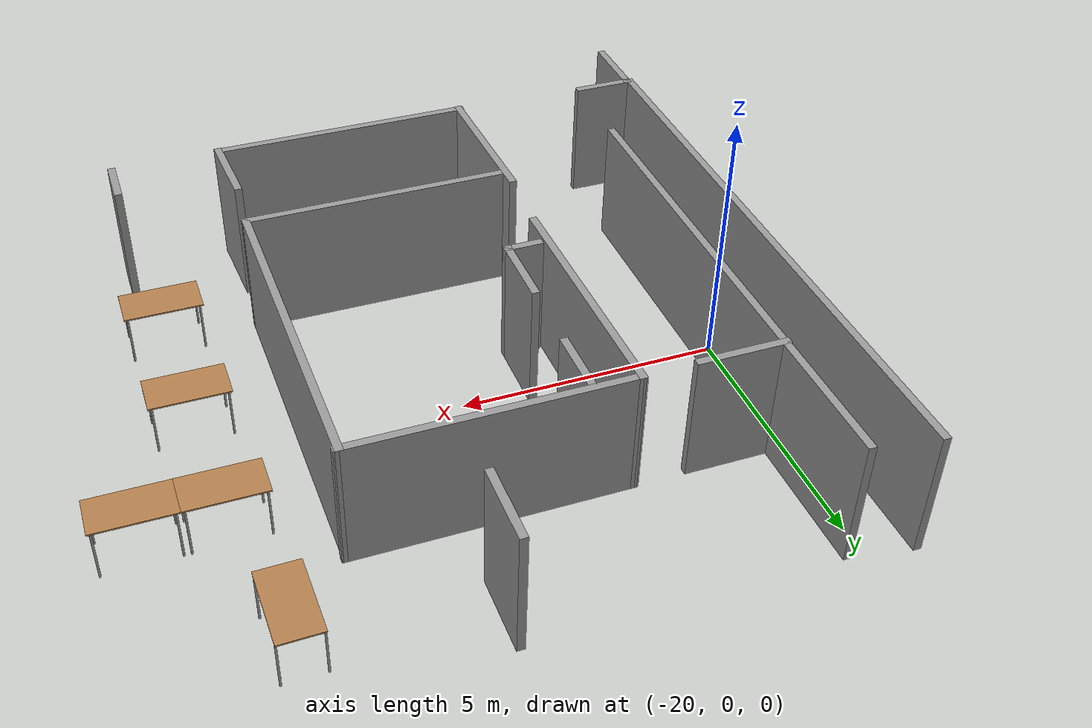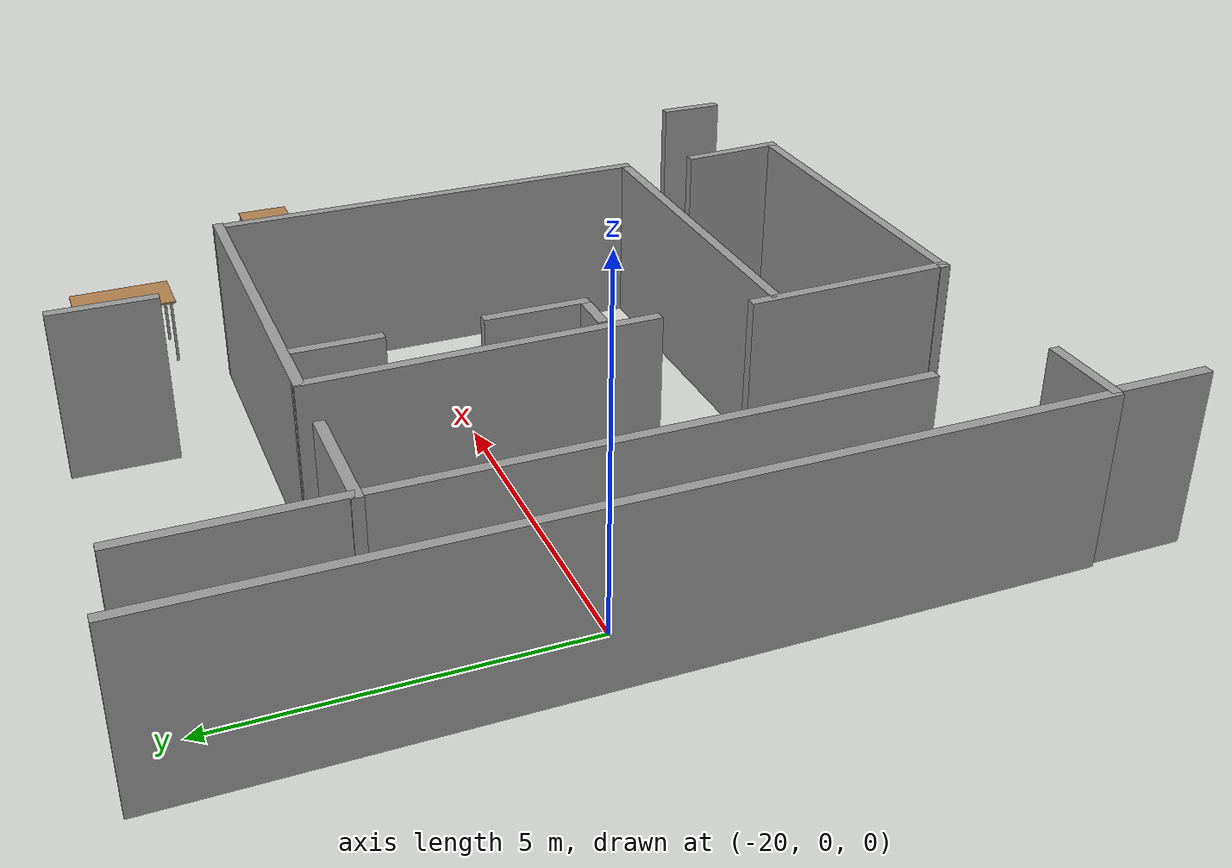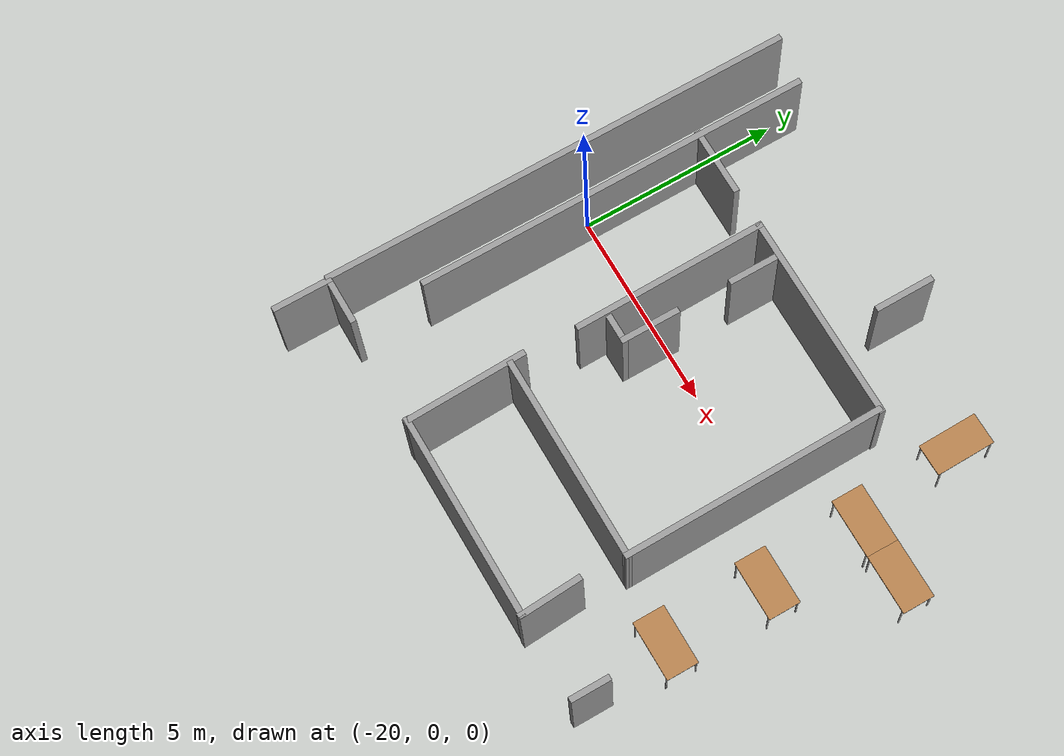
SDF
<sdf version="1.7">
 <model name="turtlebot3_world_V3">
  <link name="turtlebot3_world_1::The_Project_Hub_Building::Wall_0">
   <pose>-17.0813 -4.7815 0 0 0 -1.54154</pose>
   <visual name="Wall_0_Visual">
    <pose>0 0 1.25 0 -0 0</pose>
    <geometry><box><size>3.11558 0.15 2.5</size></box></geometry>
    <material>
     <script><uri>file://media/materials/scripts/gazebo.material</uri><name>Gazebo/Grey</name></script>
     <ambient>1 1 1 1</ambient>
     <shader type="pixel"/>
    </material>
    <meta><layer>0</layer></meta>
   </visual>
   <collision name="Wall_0_Collision">
    <pose>0 0 1.25 0 -0 0</pose>
    <geometry><box><size>3.11558 0.15 2.5</size></box></geometry>
    <surface>
     <friction>
      <ode><mu>1</mu><mu2>1</mu2><fdir1>0 0 0</fdir1><slip1>0</slip1><slip2>0</slip2></ode>
      <torsional>
       <coefficient>1</coefficient>
       <patch_radius>0</patch_radius>
       <surface_radius>0</surface_radius>
       <use_patch_radius>1</use_patch_radius>
       <ode><slip>0</slip></ode>
      </torsional>
     </friction>
     <bounce><restitution_coefficient>0</restitution_coefficient><threshold>1e+06</threshold></bounce>
     <contact>
      <collide_without_contact>0</collide_without_contact>
      <collide_without_contact_bitmask>1</collide_without_contact_bitmask>
      <collide_bitmask>1</collide_bitmask>
      <ode>
       <soft_cfm>0</soft_cfm>
       <soft_erp>0.2</soft_erp>
       <kp>1e+13</kp>
       <kd>1</kd>
       <max_vel>0.01</max_vel>
       <min_depth>0</min_depth>
      </ode>
      <bullet>
       <split_impulse>1</split_impulse>
       <split_impulse_penetration_threshold>-0.01</split_impulse_penetration_threshold>
       <soft_cfm>0</soft_cfm>
       <soft_erp>0.2</soft_erp>
       <kp>1e+13</kp>
       <kd>1</kd>
      </bullet>
     </contact>
    </surface>
   </collision>
  </link>
  <link name="turtlebot3_world_1::The_Project_Hub_Building::Wall_1">
   <pose>-14.5053 -6.2463 0 0 -0 0</pose>
   <visual name="Wall_1_Visual">
    <pose>0 0 1.25 0 -0 0</pose>
    <geometry><box><size>5.25 0.15 2.5</size></box></geometry>
    <material>
     <script><uri>file://media/materials/scripts/gazebo.material</uri><name>Gazebo/Grey</name></script>
     <ambient>1 1 1 1</ambient>
     <shader type="pixel"/>
    </material>
    <meta><layer>0</layer></meta>
   </visual>
   <collision name="Wall_1_Collision">
    <pose>0 0 1.25 0 -0 0</pose>
    <geometry><box><size>5.25 0.15 2.5</size></box></geometry>
    <surface>
     <friction>
      <ode><mu>1</mu><mu2>1</mu2><fdir1>0 0 0</fdir1><slip1>0</slip1><slip2>0</slip2></ode>
      <torsional>
       <coefficient>1</coefficient>
       <patch_radius>0</patch_radius>
       <surface_radius>0</surface_radius>
       <use_patch_radius>1</use_patch_radius>
       <ode><slip>0</slip></ode>
      </torsional>
     </friction>
     <bounce><restitution_coefficient>0</restitution_coefficient><threshold>1e+06</threshold></bounce>
     <contact>
      <collide_without_contact>0</collide_without_contact>
      <collide_without_contact_bitmask>1</collide_without_contact_bitmask>
      <collide_bitmask>1</collide_bitmask>
      <ode>
       <soft_cfm>0</soft_cfm>
       <soft_erp>0.2</soft_erp>
       <kp>1e+13</kp>
       <kd>1</kd>
       <max_vel>0.01</max_vel>
       <min_depth>0</min_depth>
      </ode>
      <bullet>
       <split_impulse>1</split_impulse>
       <split_impulse_penetration_threshold>-0.01</split_impulse_penetration_threshold>
       <soft_cfm>0</soft_cfm>
       <soft_erp>0.2</soft_erp>
       <kp>1e+13</kp>
       <kd>1</kd>
      </bullet>
     </contact>
    </surface>
   </collision>
  </link>
  <link name="turtlebot3_world_1::The_Project_Hub_Building::Wall_15">
   <pose>-14.0325 4.79599 0 0 0 -1.5708</pose>
   <visual name="Wall_15_Visual">
    <pose>0 0 1.25 0 -0 0</pose>
    <geometry><box><size>1.5 0.15 2.5</size></box></geometry>
    <material>
     <script><uri>file://media/materials/scripts/gazebo.material</uri><name>Gazebo/Grey</name></script>
     <ambient>1 1 1 1</ambient>
     <shader type="pixel"/>
    </material>
    <meta><layer>0</layer></meta>
   </visual>
   <collision name="Wall_15_Collision">
    <pose>0 0 1.25 0 -0 0</pose>
    <geometry><box><size>1.5 0.15 2.5</size></box></geometry>
    <surface>
     <friction>
      <ode><mu>1</mu><mu2>1</mu2><fdir1>0 0 0</fdir1><slip1>0</slip1><slip2>0</slip2></ode>
      <torsional>
       <coefficient>1</coefficient>
       <patch_radius>0</patch_radius>
       <surface_radius>0</surface_radius>
       <use_patch_radius>1</use_patch_radius>
       <ode><slip>0</slip></ode>
      </torsional>
     </friction>
     <bounce><restitution_coefficient>0</restitution_coefficient><threshold>1e+06</threshold></bounce>
     <contact>
      <collide_without_contact>0</collide_without_contact>
      <collide_without_contact_bitmask>1</collide_without_contact_bitmask>
      <collide_bitmask>1</collide_bitmask>
      <ode>
       <soft_cfm>0</soft_cfm>
       <soft_erp>0.2</soft_erp>
       <kp>1e+13</kp>
       <kd>1</kd>
       <max_vel>0.01</max_vel>
       <min_depth>0</min_depth>
      </ode>
      <bullet>
       <split_impulse>1</split_impulse>
       <split_impulse_penetration_threshold>-0.01</split_impulse_penetration_threshold>
       <soft_cfm>0</soft_cfm>
       <soft_erp>0.2</soft_erp>
       <kp>1e+13</kp>
       <kd>1</kd>
      </bullet>
     </contact>
    </surface>
   </collision>
  </link>
  <link name="turtlebot3_world_1::The_Project_Hub_Building::Wall_2">
   <pose>-11.9813 -5.5315 0 0 -0 1.62996</pose>
   <visual name="Wall_2_Visual">
    <pose>0 0 1.25 0 -0 0</pose>
    <geometry><box><size>1.61687 0.15 2.5</size></box></geometry>
    <material>
     <script><uri>file://media/materials/scripts/gazebo.material</uri><name>Gazebo/Grey</name></script>
     <ambient>1 1 1 1</ambient>
     <shader type="pixel"/>
    </material>
    <meta><layer>0</layer></meta>
   </visual>
   <collision name="Wall_2_Collision">
    <pose>0 0 1.25 0 -0 0</pose>
    <geometry><box><size>1.61687 0.15 2.5</size></box></geometry>
    <surface>
     <friction>
      <ode><mu>1</mu><mu2>1</mu2><fdir1>0 0 0</fdir1><slip1>0</slip1><slip2>0</slip2></ode>
      <torsional>
       <coefficient>1</coefficient>
       <patch_radius>0</patch_radius>
       <surface_radius>0</surface_radius>
       <use_patch_radius>1</use_patch_radius>
       <ode><slip>0</slip></ode>
      </torsional>
     </friction>
     <bounce><restitution_coefficient>0</restitution_coefficient><threshold>1e+06</threshold></bounce>
     <contact>
      <collide_without_contact>0</collide_without_contact>
      <collide_without_contact_bitmask>1</collide_without_contact_bitmask>
      <collide_bitmask>1</collide_bitmask>
      <ode>
       <soft_cfm>0</soft_cfm>
       <soft_erp>0.2</soft_erp>
       <kp>1e+13</kp>
       <kd>1</kd>
       <max_vel>0.01</max_vel>
       <min_depth>0</min_depth>
      </ode>
      <bullet>
       <split_impulse>1</split_impulse>
       <split_impulse_penetration_threshold>-0.01</split_impulse_penetration_threshold>
       <soft_cfm>0</soft_cfm>
       <soft_erp>0.2</soft_erp>
       <kp>1e+13</kp>
       <kd>1</kd>
      </bullet>
     </contact>
    </surface>
   </collision>
  </link>
  <link name="turtlebot3_world_1::The_Project_Hub_Building::Wall_36">
   <pose>-19.7235 0.579571 0 0 0 -1.5708</pose>
   <visual name="Wall_36_Visual">
    <pose>0 0 1.25 0 -0 0</pose>
    <geometry><box><size>10 0.15 2.5</size></box></geometry>
    <material>
     <script><uri>file://media/materials/scripts/gazebo.material</uri><name>Gazebo/Grey</name></script>
     <ambient>1 1 1 1</ambient>
     <shader type="pixel"/>
    </material>
    <meta><layer>0</layer></meta>
   </visual>
   <collision name="Wall_36_Collision">
    <pose>0 0 1.25 0 -0 0</pose>
    <geometry><box><size>10 0.15 2.5</size></box></geometry>
    <surface>
     <friction>
      <ode><mu>1</mu><mu2>1</mu2><fdir1>0 0 0</fdir1><slip1>0</slip1><slip2>0</slip2></ode>
      <torsional>
       <coefficient>1</coefficient>
       <patch_radius>0</patch_radius>
       <surface_radius>0</surface_radius>
       <use_patch_radius>1</use_patch_radius>
       <ode><slip>0</slip></ode>
      </torsional>
     </friction>
     <bounce><restitution_coefficient>0</restitution_coefficient><threshold>1e+06</threshold></bounce>
     <contact>
      <collide_without_contact>0</collide_without_contact>
      <collide_without_contact_bitmask>1</collide_without_contact_bitmask>
      <collide_bitmask>1</collide_bitmask>
      <ode>
       <soft_cfm>0</soft_cfm>
       <soft_erp>0.2</soft_erp>
       <kp>1e+13</kp>
       <kd>1</kd>
       <max_vel>0.01</max_vel>
       <min_depth>0</min_depth>
      </ode>
      <bullet>
       <split_impulse>1</split_impulse>
       <split_impulse_penetration_threshold>-0.01</split_impulse_penetration_threshold>
       <soft_cfm>0</soft_cfm>
       <soft_erp>0.2</soft_erp>
       <kp>1e+13</kp>
       <kd>1</kd>
      </bullet>
     </contact>
    </surface>
   </collision>
  </link>
  <link name="turtlebot3_world_1::The_Project_Hub_Building::Wall_38">
   <pose>-20.3068 -6.17125 0 0 -0 3.14159</pose>
   <visual name="Wall_38_Visual">
    <pose>0 0 1.25 0 -0 0</pose>
    <geometry><box><size>1.25 0.15 2.5</size></box></geometry>
    <material>
     <script><uri>file://media/materials/scripts/gazebo.material</uri><name>Gazebo/Grey</name></script>
     <ambient>1 1 1 1</ambient>
     <shader type="pixel"/>
    </material>
    <meta><layer>0</layer></meta>
   </visual>
   <collision name="Wall_38_Collision">
    <pose>0 0 1.25 0 -0 0</pose>
    <geometry><box><size>1.25 0.15 2.5</size></box></geometry>
    <surface>
     <friction>
      <ode><mu>1</mu><mu2>1</mu2><fdir1>0 0 0</fdir1><slip1>0</slip1><slip2>0</slip2></ode>
      <torsional>
       <coefficient>1</coefficient>
       <patch_radius>0</patch_radius>
       <surface_radius>0</surface_radius>
       <use_patch_radius>1</use_patch_radius>
       <ode><slip>0</slip></ode>
      </torsional>
     </friction>
     <bounce><restitution_coefficient>0</restitution_coefficient><threshold>1e+06</threshold></bounce>
     <contact>
      <collide_without_contact>0</collide_without_contact>
      <collide_without_contact_bitmask>1</collide_without_contact_bitmask>
      <collide_bitmask>1</collide_bitmask>
      <ode>
       <soft_cfm>0</soft_cfm>
       <soft_erp>0.2</soft_erp>
       <kp>1e+13</kp>
       <kd>1</kd>
       <max_vel>0.01</max_vel>
       <min_depth>0</min_depth>
      </ode>
      <bullet>
       <split_impulse>1</split_impulse>
       <split_impulse_penetration_threshold>-0.01</split_impulse_penetration_threshold>
       <soft_cfm>0</soft_cfm>
       <soft_erp>0.2</soft_erp>
       <kp>1e+13</kp>
       <kd>1</kd>
      </bullet>
     </contact>
    </surface>
   </collision>
  </link>
  <link name="turtlebot3_world_1::The_Project_Hub_Building::Wall_39">
   <pose>-20.8568 -6.84625 0 0 0 -1.5708</pose>
   <visual name="Wall_39_Visual">
    <pose>0 0 1.25 0 -0 0</pose>
    <geometry><box><size>1.5 0.15 2.5</size></box></geometry>
    <material>
     <script><uri>file://media/materials/scripts/gazebo.material</uri><name>Gazebo/Grey</name></script>
     <ambient>1 1 1 1</ambient>
     <shader type="pixel"/>
    </material>
    <meta><layer>0</layer></meta>
   </visual>
   <collision name="Wall_39_Collision">
    <pose>0 0 1.25 0 -0 0</pose>
    <geometry><box><size>1.5 0.15 2.5</size></box></geometry>
    <surface>
     <friction>
      <ode><mu>1</mu><mu2>1</mu2><fdir1>0 0 0</fdir1><slip1>0</slip1><slip2>0</slip2></ode>
      <torsional>
       <coefficient>1</coefficient>
       <patch_radius>0</patch_radius>
       <surface_radius>0</surface_radius>
       <use_patch_radius>1</use_patch_radius>
       <ode><slip>0</slip></ode>
      </torsional>
     </friction>
     <bounce><restitution_coefficient>0</restitution_coefficient><threshold>1e+06</threshold></bounce>
     <contact>
      <collide_without_contact>0</collide_without_contact>
      <collide_without_contact_bitmask>1</collide_without_contact_bitmask>
      <collide_bitmask>1</collide_bitmask>
      <ode>
       <soft_cfm>0</soft_cfm>
       <soft_erp>0.2</soft_erp>
       <kp>1e+13</kp>
       <kd>1</kd>
       <max_vel>0.01</max_vel>
       <min_depth>0</min_depth>
      </ode>
      <bullet>
       <split_impulse>1</split_impulse>
       <split_impulse_penetration_threshold>-0.01</split_impulse_penetration_threshold>
       <soft_cfm>0</soft_cfm>
       <soft_erp>0.2</soft_erp>
       <kp>1e+13</kp>
       <kd>1</kd>
      </bullet>
     </contact>
    </surface>
   </collision>
  </link>
  <link name="turtlebot3_world_1::The_Project_Hub_Building::Wall_4">
   <pose>-9.81422 -5.79277 0 0 0 -1.5708</pose>
   <visual name="Wall_4_Visual">
    <pose>0 0 1.25 0 -0 0</pose>
    <geometry><box><size>1 0.15 2.5</size></box></geometry>
    <material>
     <script><uri>file://media/materials/scripts/gazebo.material</uri><name>Gazebo/Grey</name></script>
     <ambient>1 1 1 1</ambient>
     <shader type="pixel"/>
    </material>
    <meta><layer>0</layer></meta>
   </visual>
   <collision name="Wall_4_Collision">
    <pose>0 0 1.25 0 -0 0</pose>
    <geometry><box><size>1 0.15 2.5</size></box></geometry>
    <surface>
     <friction>
      <ode><mu>1</mu><mu2>1</mu2><fdir1>0 0 0</fdir1><slip1>0</slip1><slip2>0</slip2></ode>
      <torsional>
       <coefficient>1</coefficient>
       <patch_radius>0</patch_radius>
       <surface_radius>0</surface_radius>
       <use_patch_radius>1</use_patch_radius>
       <ode><slip>0</slip></ode>
      </torsional>
     </friction>
     <bounce><restitution_coefficient>0</restitution_coefficient><threshold>1e+06</threshold></bounce>
     <contact>
      <collide_without_contact>0</collide_without_contact>
      <collide_without_contact_bitmask>1</collide_without_contact_bitmask>
      <collide_bitmask>1</collide_bitmask>
      <ode>
       <soft_cfm>0</soft_cfm>
       <soft_erp>0.2</soft_erp>
       <kp>1e+13</kp>
       <kd>1</kd>
       <max_vel>0.01</max_vel>
       <min_depth>0</min_depth>
      </ode>
      <bullet>
       <split_impulse>1</split_impulse>
       <split_impulse_penetration_threshold>-0.01</split_impulse_penetration_threshold>
       <soft_cfm>0</soft_cfm>
       <soft_erp>0.2</soft_erp>
       <kp>1e+13</kp>
       <kd>1</kd>
      </bullet>
     </contact>
    </surface>
   </collision>
  </link>
  <link name="turtlebot3_world_1::The_Project_Hub_Building::Wall_43">
   <pose>-20.9181 -0.220847 0 0 0 -1.5708</pose>
   <visual name="Wall_43_Visual">
    <pose>0 0 1.25 0 -0 0</pose>
    <geometry><box><size>12 0.15 2.5</size></box></geometry>
    <material>
     <script><uri>file://media/materials/scripts/gazebo.material</uri><name>Gazebo/Grey</name></script>
     <ambient>1 1 1 1</ambient>
     <shader type="pixel"/>
    </material>
    <meta><layer>0</layer></meta>
   </visual>
   <collision name="Wall_43_Collision">
    <pose>0 0 1.25 0 -0 0</pose>
    <geometry><box><size>12 0.15 2.5</size></box></geometry>
    <surface>
     <friction>
      <ode><mu>1</mu><mu2>1</mu2><fdir1>0 0 0</fdir1><slip1>0</slip1><slip2>0</slip2></ode>
      <torsional>
       <coefficient>1</coefficient>
       <patch_radius>0</patch_radius>
       <surface_radius>0</surface_radius>
       <use_patch_radius>1</use_patch_radius>
       <ode><slip>0</slip></ode>
      </torsional>
     </friction>
     <bounce><restitution_coefficient>0</restitution_coefficient><threshold>1e+06</threshold></bounce>
     <contact>
      <collide_without_contact>0</collide_without_contact>
      <collide_without_contact_bitmask>1</collide_without_contact_bitmask>
      <collide_bitmask>1</collide_bitmask>
      <ode>
       <soft_cfm>0</soft_cfm>
       <soft_erp>0.2</soft_erp>
       <kp>1e+13</kp>
       <kd>1</kd>
       <max_vel>0.01</max_vel>
       <min_depth>0</min_depth>
      </ode>
      <bullet>
       <split_impulse>1</split_impulse>
       <split_impulse_penetration_threshold>-0.01</split_impulse_penetration_threshold>
       <soft_cfm>0</soft_cfm>
       <soft_erp>0.2</soft_erp>
       <kp>1e+13</kp>
       <kd>1</kd>
      </bullet>
     </contact>
    </surface>
   </collision>
  </link>
  <link name="turtlebot3_world_1::The_Project_Hub_Building::Wall_45">
   <pose>-14.4928 -3.62817 0 0 -0 0</pose>
   <visual name="Wall_45_Visual">
    <pose>0 0 1.25 0 -0 0</pose>
    <geometry><box><size>5.25 0.15 2.5</size></box></geometry>
    <material>
     <script><uri>file://media/materials/scripts/gazebo.material</uri><name>Gazebo/Grey</name></script>
     <ambient>1 1 1 1</ambient>
     <shader type="pixel"/>
    </material>
    <meta><layer>0</layer></meta>
   </visual>
   <collision name="Wall_45_Collision">
    <pose>0 0 1.25 0 -0 0</pose>
    <geometry><box><size>5.25 0.15 2.5</size></box></geometry>
    <surface>
     <friction>
      <ode><mu>1</mu><mu2>1</mu2><fdir1>0 0 0</fdir1><slip1>0</slip1><slip2>0</slip2></ode>
      <torsional>
       <coefficient>1</coefficient>
       <patch_radius>0</patch_radius>
       <surface_radius>0</surface_radius>
       <use_patch_radius>1</use_patch_radius>
       <ode><slip>0</slip></ode>
      </torsional>
     </friction>
     <bounce><restitution_coefficient>0</restitution_coefficient><threshold>1e+06</threshold></bounce>
     <contact>
      <collide_without_contact>0</collide_without_contact>
      <collide_without_contact_bitmask>1</collide_without_contact_bitmask>
      <collide_bitmask>1</collide_bitmask>
      <ode>
       <soft_cfm>0</soft_cfm>
       <soft_erp>0.2</soft_erp>
       <kp>1e+13</kp>
       <kd>1</kd>
       <max_vel>0.01</max_vel>
       <min_depth>0</min_depth>
      </ode>
      <bullet>
       <split_impulse>1</split_impulse>
       <split_impulse_penetration_threshold>-0.01</split_impulse_penetration_threshold>
       <soft_cfm>0</soft_cfm>
       <soft_erp>0.2</soft_erp>
       <kp>1e+13</kp>
       <kd>1</kd>
      </bullet>
     </contact>
    </surface>
   </collision>
  </link>
  <link name="turtlebot3_world_1::The_Project_Hub_Building::Wall_46">
   <pose>-11.9718 -0.380851 0 0 -0 1.5797</pose>
   <visual name="Wall_46_Visual">
    <pose>0 0 1.25 0 -0 0</pose>
    <geometry><box><size>6.64489 0.15 2.5</size></box></geometry>
    <material>
     <script><uri>file://media/materials/scripts/gazebo.material</uri><name>Gazebo/Grey</name></script>
     <ambient>1 1 1 1</ambient>
     <shader type="pixel"/>
    </material>
    <meta><layer>0</layer></meta>
   </visual>
   <collision name="Wall_46_Collision">
    <pose>0 0 1.25 0 -0 0</pose>
    <geometry><box><size>6.64489 0.15 2.5</size></box></geometry>
    <surface>
     <friction>
      <ode><mu>1</mu><mu2>1</mu2><fdir1>0 0 0</fdir1><slip1>0</slip1><slip2>0</slip2></ode>
      <torsional>
       <coefficient>1</coefficient>
       <patch_radius>0</patch_radius>
       <surface_radius>0</surface_radius>
       <use_patch_radius>1</use_patch_radius>
       <ode><slip>0</slip></ode>
      </torsional>
     </friction>
     <bounce><restitution_coefficient>0</restitution_coefficient><threshold>1e+06</threshold></bounce>
     <contact>
      <collide_without_contact>0</collide_without_contact>
      <collide_without_contact_bitmask>1</collide_without_contact_bitmask>
      <collide_bitmask>1</collide_bitmask>
      <ode>
       <soft_cfm>0</soft_cfm>
       <soft_erp>0.2</soft_erp>
       <kp>1e+13</kp>
       <kd>1</kd>
       <max_vel>0.01</max_vel>
       <min_depth>0</min_depth>
      </ode>
      <bullet>
       <split_impulse>1</split_impulse>
       <split_impulse_penetration_threshold>-0.01</split_impulse_penetration_threshold>
       <soft_cfm>0</soft_cfm>
       <soft_erp>0.2</soft_erp>
       <kp>1e+13</kp>
       <kd>1</kd>
      </bullet>
     </contact>
    </surface>
   </collision>
  </link>
  <link name="turtlebot3_world_1::The_Project_Hub_Building::Wall_47">
   <pose>-14.5218 2.86646 0 0 -0 3.14159</pose>
   <visual name="Wall_47_Visual">
    <pose>0 0 1.25 0 -0 0</pose>
    <geometry><box><size>5.25 0.15 2.5</size></box></geometry>
    <material>
     <script><uri>file://media/materials/scripts/gazebo.material</uri><name>Gazebo/Grey</name></script>
     <ambient>1 1 1 1</ambient>
     <shader type="pixel"/>
    </material>
    <meta><layer>0</layer></meta>
   </visual>
   <collision name="Wall_47_Collision">
    <pose>0 0 1.25 0 -0 0</pose>
    <geometry><box><size>5.25 0.15 2.5</size></box></geometry>
    <surface>
     <friction>
      <ode><mu>1</mu><mu2>1</mu2><fdir1>0 0 0</fdir1><slip1>0</slip1><slip2>0</slip2></ode>
      <torsional>
       <coefficient>1</coefficient>
       <patch_radius>0</patch_radius>
       <surface_radius>0</surface_radius>
       <use_patch_radius>1</use_patch_radius>
       <ode><slip>0</slip></ode>
      </torsional>
     </friction>
     <bounce><restitution_coefficient>0</restitution_coefficient><threshold>1e+06</threshold></bounce>
     <contact>
      <collide_without_contact>0</collide_without_contact>
      <collide_without_contact_bitmask>1</collide_without_contact_bitmask>
      <collide_bitmask>1</collide_bitmask>
      <ode>
       <soft_cfm>0</soft_cfm>
       <soft_erp>0.2</soft_erp>
       <kp>1e+13</kp>
       <kd>1</kd>
       <max_vel>0.01</max_vel>
       <min_depth>0</min_depth>
      </ode>
      <bullet>
       <split_impulse>1</split_impulse>
       <split_impulse_penetration_threshold>-0.01</split_impulse_penetration_threshold>
       <soft_cfm>0</soft_cfm>
       <soft_erp>0.2</soft_erp>
       <kp>1e+13</kp>
       <kd>1</kd>
      </bullet>
     </contact>
    </surface>
   </collision>
  </link>
  <link name="turtlebot3_world_1::The_Project_Hub_Building::Wall_48">
   <pose>-17.0718 0.494151 0 0 0 -1.5586</pose>
   <visual name="Wall_48_Visual">
    <pose>0 0 1.25 0 -0 0</pose>
    <geometry><box><size>4.89498 0.15 2.5</size></box></geometry>
    <material>
     <script><uri>file://media/materials/scripts/gazebo.material</uri><name>Gazebo/Grey</name></script>
     <ambient>1 1 1 1</ambient>
     <shader type="pixel"/>
    </material>
    <meta><layer>0</layer></meta>
   </visual>
   <collision name="Wall_48_Collision">
    <pose>0 0 1.25 0 -0 0</pose>
    <geometry><box><size>4.89498 0.15 2.5</size></box></geometry>
    <surface>
     <friction>
      <ode><mu>1</mu><mu2>1</mu2><fdir1>0 0 0</fdir1><slip1>0</slip1><slip2>0</slip2></ode>
      <torsional>
       <coefficient>1</coefficient>
       <patch_radius>0</patch_radius>
       <surface_radius>0</surface_radius>
       <use_patch_radius>1</use_patch_radius>
       <ode><slip>0</slip></ode>
      </torsional>
     </friction>
     <bounce><restitution_coefficient>0</restitution_coefficient><threshold>1e+06</threshold></bounce>
     <contact>
      <collide_without_contact>0</collide_without_contact>
      <collide_without_contact_bitmask>1</collide_without_contact_bitmask>
      <collide_bitmask>1</collide_bitmask>
      <ode>
       <soft_cfm>0</soft_cfm>
       <soft_erp>0.2</soft_erp>
       <kp>1e+13</kp>
       <kd>1</kd>
       <max_vel>0.01</max_vel>
       <min_depth>0</min_depth>
      </ode>
      <bullet>
       <split_impulse>1</split_impulse>
       <split_impulse_penetration_threshold>-0.01</split_impulse_penetration_threshold>
       <soft_cfm>0</soft_cfm>
       <soft_erp>0.2</soft_erp>
       <kp>1e+13</kp>
       <kd>1</kd>
      </bullet>
     </contact>
    </surface>
   </collision>
  </link>
  <link name="turtlebot3_world_1::The_Project_Hub_Building::Wall_50">
   <pose>-16.2496 2.17939 0 0 0 -1.5708</pose>
   <visual name="Wall_50_Visual">
    <pose>0 0 1.25 0 -0 0</pose>
    <geometry><box><size>1.25 0.15 2.5</size></box></geometry>
    <material>
     <script><uri>file://media/materials/scripts/gazebo.material</uri><name>Gazebo/Grey</name></script>
     <ambient>1 1 1 1</ambient>
     <shader type="pixel"/>
    </material>
    <meta><layer>0</layer></meta>
   </visual>
   <collision name="Wall_50_Collision">
    <pose>0 0 1.25 0 -0 0</pose>
    <geometry><box><size>1.25 0.15 2.5</size></box></geometry>
    <surface>
     <friction>
      <ode><mu>1</mu><mu2>1</mu2><fdir1>0 0 0</fdir1><slip1>0</slip1><slip2>0</slip2></ode>
      <torsional>
       <coefficient>1</coefficient>
       <patch_radius>0</patch_radius>
       <surface_radius>0</surface_radius>
       <use_patch_radius>1</use_patch_radius>
       <ode><slip>0</slip></ode>
      </torsional>
     </friction>
     <bounce><restitution_coefficient>0</restitution_coefficient><threshold>1e+06</threshold></bounce>
     <contact>
      <collide_without_contact>0</collide_without_contact>
      <collide_without_contact_bitmask>1</collide_without_contact_bitmask>
      <collide_bitmask>1</collide_bitmask>
      <ode>
       <soft_cfm>0</soft_cfm>
       <soft_erp>0.2</soft_erp>
       <kp>1e+13</kp>
       <kd>1</kd>
       <max_vel>0.01</max_vel>
       <min_depth>0</min_depth>
      </ode>
      <bullet>
       <split_impulse>1</split_impulse>
       <split_impulse_penetration_threshold>-0.01</split_impulse_penetration_threshold>
       <soft_cfm>0</soft_cfm>
       <soft_erp>0.2</soft_erp>
       <kp>1e+13</kp>
       <kd>1</kd>
      </bullet>
     </contact>
    </surface>
   </collision>
  </link>
  <link name="turtlebot3_world_1::The_Project_Hub_Building::Wall_52">
   <pose>-16.2661 -0.509046 0 0 0 -1.5708</pose>
   <visual name="Wall_52_Visual">
    <pose>0 0 1.25 0 -0 0</pose>
    <geometry><box><size>1.5 0.15 2.5</size></box></geometry>
    <material>
     <script><uri>file://media/materials/scripts/gazebo.material</uri><name>Gazebo/Grey</name></script>
     <ambient>1 1 1 1</ambient>
     <shader type="pixel"/>
    </material>
    <meta><layer>0</layer></meta>
   </visual>
   <collision name="Wall_52_Collision">
    <pose>0 0 1.25 0 -0 0</pose>
    <geometry><box><size>1.5 0.15 2.5</size></box></geometry>
    <surface>
     <friction>
      <ode><mu>1</mu><mu2>1</mu2><fdir1>0 0 0</fdir1><slip1>0</slip1><slip2>0</slip2></ode>
      <torsional>
       <coefficient>1</coefficient>
       <patch_radius>0</patch_radius>
       <surface_radius>0</surface_radius>
       <use_patch_radius>1</use_patch_radius>
       <ode><slip>0</slip></ode>
      </torsional>
     </friction>
     <bounce><restitution_coefficient>0</restitution_coefficient><threshold>1e+06</threshold></bounce>
     <contact>
      <collide_without_contact>0</collide_without_contact>
      <collide_without_contact_bitmask>1</collide_without_contact_bitmask>
      <collide_bitmask>1</collide_bitmask>
      <ode>
       <soft_cfm>0</soft_cfm>
       <soft_erp>0.2</soft_erp>
       <kp>1e+13</kp>
       <kd>1</kd>
       <max_vel>0.01</max_vel>
       <min_depth>0</min_depth>
      </ode>
      <bullet>
       <split_impulse>1</split_impulse>
       <split_impulse_penetration_threshold>-0.01</split_impulse_penetration_threshold>
       <soft_cfm>0</soft_cfm>
       <soft_erp>0.2</soft_erp>
       <kp>1e+13</kp>
       <kd>1</kd>
      </bullet>
     </contact>
    </surface>
   </collision>
  </link>
  <link name="turtlebot3_world_1::The_Project_Hub_Building::Wall_53">
   <pose>-16.5661 -1.18405 0 0 -0 3.14159</pose>
   <visual name="Wall_53_Visual">
    <pose>0 0 1.25 0 -0 0</pose>
    <geometry><box><size>0.75 0.15 2.5</size></box></geometry>
    <material>
     <script><uri>file://media/materials/scripts/gazebo.material</uri><name>Gazebo/Grey</name></script>
     <ambient>1 1 1 1</ambient>
     <shader type="pixel"/>
    </material>
    <meta><layer>0</layer></meta>
   </visual>
   <collision name="Wall_53_Collision">
    <pose>0 0 1.25 0 -0 0</pose>
    <geometry><box><size>0.75 0.15 2.5</size></box></geometry>
    <surface>
     <friction>
      <ode><mu>1</mu><mu2>1</mu2><fdir1>0 0 0</fdir1><slip1>0</slip1><slip2>0</slip2></ode>
      <torsional>
       <coefficient>1</coefficient>
       <patch_radius>0</patch_radius>
       <surface_radius>0</surface_radius>
       <use_patch_radius>1</use_patch_radius>
       <ode><slip>0</slip></ode>
      </torsional>
     </friction>
     <bounce><restitution_coefficient>0</restitution_coefficient><threshold>1e+06</threshold></bounce>
     <contact>
      <collide_without_contact>0</collide_without_contact>
      <collide_without_contact_bitmask>1</collide_without_contact_bitmask>
      <collide_bitmask>1</collide_bitmask>
      <ode>
       <soft_cfm>0</soft_cfm>
       <soft_erp>0.2</soft_erp>
       <kp>1e+13</kp>
       <kd>1</kd>
       <max_vel>0.01</max_vel>
       <min_depth>0</min_depth>
      </ode>
      <bullet>
       <split_impulse>1</split_impulse>
       <split_impulse_penetration_threshold>-0.01</split_impulse_penetration_threshold>
       <soft_cfm>0</soft_cfm>
       <soft_erp>0.2</soft_erp>
       <kp>1e+13</kp>
       <kd>1</kd>
      </bullet>
     </contact>
    </surface>
   </collision>
  </link>
  <link name="turtlebot3_world_1::The_Project_Hub_Building::Wall_55">
   <pose>-18.9476 2.8529 0 0 -0 0</pose>
   <visual name="Wall_55_Visual">
    <pose>0 0 1.25 0 -0 0</pose>
    <geometry><box><size>1.75 0.15 2.5</size></box></geometry>
    <material>
     <script><uri>file://media/materials/scripts/gazebo.material</uri><name>Gazebo/Grey</name></script>
     <ambient>1 1 1 1</ambient>
     <shader type="pixel"/>
    </material>
    <meta><layer>0</layer></meta>
   </visual>
   <collision name="Wall_55_Collision">
    <pose>0 0 1.25 0 -0 0</pose>
    <geometry><box><size>1.75 0.15 2.5</size></box></geometry>
    <surface>
     <friction>
      <ode><mu>1</mu><mu2>1</mu2><fdir1>0 0 0</fdir1><slip1>0</slip1><slip2>0</slip2></ode>
      <torsional>
       <coefficient>1</coefficient>
       <patch_radius>0</patch_radius>
       <surface_radius>0</surface_radius>
       <use_patch_radius>1</use_patch_radius>
       <ode><slip>0</slip></ode>
      </torsional>
     </friction>
     <bounce><restitution_coefficient>0</restitution_coefficient><threshold>1e+06</threshold></bounce>
     <contact>
      <collide_without_contact>0</collide_without_contact>
      <collide_without_contact_bitmask>1</collide_without_contact_bitmask>
      <collide_bitmask>1</collide_bitmask>
      <ode>
       <soft_cfm>0</soft_cfm>
       <soft_erp>0.2</soft_erp>
       <kp>1e+13</kp>
       <kd>1</kd>
       <max_vel>0.01</max_vel>
       <min_depth>0</min_depth>
      </ode>
      <bullet>
       <split_impulse>1</split_impulse>
       <split_impulse_penetration_threshold>-0.01</split_impulse_penetration_threshold>
       <soft_cfm>0</soft_cfm>
       <soft_erp>0.2</soft_erp>
       <kp>1e+13</kp>
       <kd>1</kd>
      </bullet>
     </contact>
    </surface>
   </collision>
  </link>
  <model name="Group_of_Tables_1"><static>1</static><pose>-11.4518 -11.9159 0 0 -0 0</pose></model>
  <model name="table_0_clone_0">
   <static>1</static>
   <link name="link">
    <collision name="surface">
     <pose>0 0 1 0 -0 0</pose>
     <geometry><box><size>1.5 0.8 0.03</size></box></geometry>
     <surface><friction><ode><mu>0.6</mu><mu2>0.6</mu2></ode></friction></surface>
    </collision>
    <visual name="visual1">
     <pose>0 0 1 0 -0 0</pose>
     <geometry><box><size>1.5 0.8 0.03</size></box></geometry>
     <material>
      <script><uri>file://media/materials/scripts/gazebo.material</uri><name>Gazebo/Wood</name></script>
     </material>
    </visual>
    <collision name="front_left_leg">
     <pose>0.68 0.38 0.5 0 -0 0</pose>
     <geometry><cylinder><radius>0.02</radius><length>1</length></cylinder></geometry>
    </collision>
    <visual name="front_left_leg">
     <pose>0.68 0.38 0.5 0 -0 0</pose>
     <geometry><cylinder><radius>0.02</radius><length>1</length></cylinder></geometry>
     <material>
      <script><uri>file://media/materials/scripts/gazebo.material</uri><name>Gazebo/Grey</name></script>
     </material>
    </visual>
    <collision name="front_right_leg">
     <pose>0.68 -0.38 0.5 0 -0 0</pose>
     <geometry><cylinder><radius>0.02</radius><length>1</length></cylinder></geometry>
    </collision>
    <visual name="front_right_leg">
     <pose>0.68 -0.38 0.5 0 -0 0</pose>
     <geometry><cylinder><radius>0.02</radius><length>1</length></cylinder></geometry>
     <material>
      <script><uri>file://media/materials/scripts/gazebo.material</uri><name>Gazebo/Grey</name></script>
     </material>
    </visual>
    <collision name="back_right_leg">
     <pose>-0.68 -0.38 0.5 0 -0 0</pose>
     <geometry><cylinder><radius>0.02</radius><length>1</length></cylinder></geometry>
    </collision>
    <visual name="back_right_leg">
     <pose>-0.68 -0.38 0.5 0 -0 0</pose>
     <geometry><cylinder><radius>0.02</radius><length>1</length></cylinder></geometry>
     <material>
      <script><uri>file://media/materials/scripts/gazebo.material</uri><name>Gazebo/Grey</name></script>
     </material>
    </visual>
    <collision name="back_left_leg">
     <pose>-0.68 0.38 0.5 0 -0 0</pose>
     <geometry><cylinder><radius>0.02</radius><length>1</length></cylinder></geometry>
    </collision>
    <visual name="back_left_leg">
     <pose>-0.68 0.38 0.5 0 -0 0</pose>
     <geometry><cylinder><radius>0.02</radius><length>1</length></cylinder></geometry>
     <material>
      <script><uri>file://media/materials/scripts/gazebo.material</uri><name>Gazebo/Grey</name></script>
     </material>
    </visual>
   </link>
   <pose>-10.7756 4.28348 0 0 -0 1.58428</pose>
  </model>
  <model name="table_clone_12">
   <static>1</static>
   <link name="link">
    <collision name="surface">
     <pose>0 0 1 0 -0 0</pose>
     <geometry><box><size>1.5 0.8 0.03</size></box></geometry>
     <surface><friction><ode><mu>0.6</mu><mu2>0.6</mu2></ode></friction></surface>
    </collision>
    <visual name="visual1">
     <pose>0 0 1 0 -0 0</pose>
     <geometry><box><size>1.5 0.8 0.03</size></box></geometry>
     <material>
      <script><uri>file://media/materials/scripts/gazebo.material</uri><name>Gazebo/Wood</name></script>
     </material>
    </visual>
    <collision name="front_left_leg">
     <pose>0.68 0.38 0.5 0 -0 0</pose>
     <geometry><cylinder><radius>0.02</radius><length>1</length></cylinder></geometry>
    </collision>
    <visual name="front_left_leg">
     <pose>0.68 0.38 0.5 0 -0 0</pose>
     <geometry><cylinder><radius>0.02</radius><length>1</length></cylinder></geometry>
     <material>
      <script><uri>file://media/materials/scripts/gazebo.material</uri><name>Gazebo/Grey</name></script>
     </material>
    </visual>
    <collision name="front_right_leg">
     <pose>0.68 -0.38 0.5 0 -0 0</pose>
     <geometry><cylinder><radius>0.02</radius><length>1</length></cylinder></geometry>
    </collision>
    <visual name="front_right_leg">
     <pose>0.68 -0.38 0.5 0 -0 0</pose>
     <geometry><cylinder><radius>0.02</radius><length>1</length></cylinder></geometry>
     <material>
      <script><uri>file://media/materials/scripts/gazebo.material</uri><name>Gazebo/Grey</name></script>
     </material>
    </visual>
    <collision name="back_right_leg">
     <pose>-0.68 -0.38 0.5 0 -0 0</pose>
     <geometry><cylinder><radius>0.02</radius><length>1</length></cylinder></geometry>
    </collision>
    <visual name="back_right_leg">
     <pose>-0.68 -0.38 0.5 0 -0 0</pose>
     <geometry><cylinder><radius>0.02</radius><length>1</length></cylinder></geometry>
     <material>
      <script><uri>file://media/materials/scripts/gazebo.material</uri><name>Gazebo/Grey</name></script>
     </material>
    </visual>
    <collision name="back_left_leg">
     <pose>-0.68 0.38 0.5 0 -0 0</pose>
     <geometry><cylinder><radius>0.02</radius><length>1</length></cylinder></geometry>
    </collision>
    <visual name="back_left_leg">
     <pose>-0.68 0.38 0.5 0 -0 0</pose>
     <geometry><cylinder><radius>0.02</radius><length>1</length></cylinder></geometry>
     <material>
      <script><uri>file://media/materials/scripts/gazebo.material</uri><name>Gazebo/Grey</name></script>
     </material>
    </visual>
   </link>
   <pose>-10.1615 -3.70467 0 0 -0 0</pose>
  </model>
  <model name="table_clone_14">
   <static>1</static>
   <link name="link">
    <collision name="surface">
     <pose>0 0 1 0 -0 0</pose>
     <geometry><box><size>1.5 0.8 0.03</size></box></geometry>
     <surface><friction><ode><mu>0.6</mu><mu2>0.6</mu2></ode></friction></surface>
    </collision>
    <visual name="visual1">
     <pose>0 0 1 0 -0 0</pose>
     <geometry><box><size>1.5 0.8 0.03</size></box></geometry>
     <material>
      <script><uri>file://media/materials/scripts/gazebo.material</uri><name>Gazebo/Wood</name></script>
     </material>
    </visual>
    <collision name="front_left_leg">
     <pose>0.68 0.38 0.5 0 -0 0</pose>
     <geometry><cylinder><radius>0.02</radius><length>1</length></cylinder></geometry>
    </collision>
    <visual name="front_left_leg">
     <pose>0.68 0.38 0.5 0 -0 0</pose>
     <geometry><cylinder><radius>0.02</radius><length>1</length></cylinder></geometry>
     <material>
      <script><uri>file://media/materials/scripts/gazebo.material</uri><name>Gazebo/Grey</name></script>
     </material>
    </visual>
    <collision name="front_right_leg">
     <pose>0.68 -0.38 0.5 0 -0 0</pose>
     <geometry><cylinder><radius>0.02</radius><length>1</length></cylinder></geometry>
    </collision>
    <visual name="front_right_leg">
     <pose>0.68 -0.38 0.5 0 -0 0</pose>
     <geometry><cylinder><radius>0.02</radius><length>1</length></cylinder></geometry>
     <material>
      <script><uri>file://media/materials/scripts/gazebo.material</uri><name>Gazebo/Grey</name></script>
     </material>
    </visual>
    <collision name="back_right_leg">
     <pose>-0.68 -0.38 0.5 0 -0 0</pose>
     <geometry><cylinder><radius>0.02</radius><length>1</length></cylinder></geometry>
    </collision>
    <visual name="back_right_leg">
     <pose>-0.68 -0.38 0.5 0 -0 0</pose>
     <geometry><cylinder><radius>0.02</radius><length>1</length></cylinder></geometry>
     <material>
      <script><uri>file://media/materials/scripts/gazebo.material</uri><name>Gazebo/Grey</name></script>
     </material>
    </visual>
    <collision name="back_left_leg">
     <pose>-0.68 0.38 0.5 0 -0 0</pose>
     <geometry><cylinder><radius>0.02</radius><length>1</length></cylinder></geometry>
    </collision>
    <visual name="back_left_leg">
     <pose>-0.68 0.38 0.5 0 -0 0</pose>
     <geometry><cylinder><radius>0.02</radius><length>1</length></cylinder></geometry>
     <material>
      <script><uri>file://media/materials/scripts/gazebo.material</uri><name>Gazebo/Grey</name></script>
     </material>
    </visual>
   </link>
   <pose>-10.1898 -1.07398 0 0 -0 0</pose>
  </model>
  <model name="table_clone_16">
   <static>1</static>
   <link name="link">
    <collision name="surface">
     <pose>0 0 1 0 -0 0</pose>
     <geometry><box><size>1.5 0.8 0.03</size></box></geometry>
     <surface><friction><ode><mu>0.6</mu><mu2>0.6</mu2></ode></friction></surface>
    </collision>
    <visual name="visual1">
     <pose>0 0 1 0 -0 0</pose>
     <geometry><box><size>1.5 0.8 0.03</size></box></geometry>
     <material>
      <script><uri>file://media/materials/scripts/gazebo.material</uri><name>Gazebo/Wood</name></script>
     </material>
    </visual>
    <collision name="front_left_leg">
     <pose>0.68 0.38 0.5 0 -0 0</pose>
     <geometry><cylinder><radius>0.02</radius><length>1</length></cylinder></geometry>
    </collision>
    <visual name="front_left_leg">
     <pose>0.68 0.38 0.5 0 -0 0</pose>
     <geometry><cylinder><radius>0.02</radius><length>1</length></cylinder></geometry>
     <material>
      <script><uri>file://media/materials/scripts/gazebo.material</uri><name>Gazebo/Grey</name></script>
     </material>
    </visual>
    <collision name="front_right_leg">
     <pose>0.68 -0.38 0.5 0 -0 0</pose>
     <geometry><cylinder><radius>0.02</radius><length>1</length></cylinder></geometry>
    </collision>
    <visual name="front_right_leg">
     <pose>0.68 -0.38 0.5 0 -0 0</pose>
     <geometry><cylinder><radius>0.02</radius><length>1</length></cylinder></geometry>
     <material>
      <script><uri>file://media/materials/scripts/gazebo.material</uri><name>Gazebo/Grey</name></script>
     </material>
    </visual>
    <collision name="back_right_leg">
     <pose>-0.68 -0.38 0.5 0 -0 0</pose>
     <geometry><cylinder><radius>0.02</radius><length>1</length></cylinder></geometry>
    </collision>
    <visual name="back_right_leg">
     <pose>-0.68 -0.38 0.5 0 -0 0</pose>
     <geometry><cylinder><radius>0.02</radius><length>1</length></cylinder></geometry>
     <material>
      <script><uri>file://media/materials/scripts/gazebo.material</uri><name>Gazebo/Grey</name></script>
     </material>
    </visual>
    <collision name="back_left_leg">
     <pose>-0.68 0.38 0.5 0 -0 0</pose>
     <geometry><cylinder><radius>0.02</radius><length>1</length></cylinder></geometry>
    </collision>
    <visual name="back_left_leg">
     <pose>-0.68 0.38 0.5 0 -0 0</pose>
     <geometry><cylinder><radius>0.02</radius><length>1</length></cylinder></geometry>
     <material>
      <script><uri>file://media/materials/scripts/gazebo.material</uri><name>Gazebo/Grey</name></script>
     </material>
    </visual>
   </link>
   <pose>-10.3087 1.54287 0 0 -0 0</pose>
  </model>
  <model name="table_clone_17">
   <static>1</static>
   <link name="link">
    <collision name="surface">
     <pose>0 0 1 0 -0 0</pose>
     <geometry><box><size>1.5 0.8 0.03</size></box></geometry>
     <surface><friction><ode><mu>0.6</mu><mu2>0.6</mu2></ode></friction></surface>
    </collision>
    <visual name="visual1">
     <pose>0 0 1 0 -0 0</pose>
     <geometry><box><size>1.5 0.8 0.03</size></box></geometry>
     <material>
      <script><uri>file://media/materials/scripts/gazebo.material</uri><name>Gazebo/Wood</name></script>
     </material>
    </visual>
    <collision name="front_left_leg">
     <pose>0.68 0.38 0.5 0 -0 0</pose>
     <geometry><cylinder><radius>0.02</radius><length>1</length></cylinder></geometry>
    </collision>
    <visual name="front_left_leg">
     <pose>0.68 0.38 0.5 0 -0 0</pose>
     <geometry><cylinder><radius>0.02</radius><length>1</length></cylinder></geometry>
     <material>
      <script><uri>file://media/materials/scripts/gazebo.material</uri><name>Gazebo/Grey</name></script>
     </material>
    </visual>
    <collision name="front_right_leg">
     <pose>0.68 -0.38 0.5 0 -0 0</pose>
     <geometry><cylinder><radius>0.02</radius><length>1</length></cylinder></geometry>
    </collision>
    <visual name="front_right_leg">
     <pose>0.68 -0.38 0.5 0 -0 0</pose>
     <geometry><cylinder><radius>0.02</radius><length>1</length></cylinder></geometry>
     <material>
      <script><uri>file://media/materials/scripts/gazebo.material</uri><name>Gazebo/Grey</name></script>
     </material>
    </visual>
    <collision name="back_right_leg">
     <pose>-0.68 -0.38 0.5 0 -0 0</pose>
     <geometry><cylinder><radius>0.02</radius><length>1</length></cylinder></geometry>
    </collision>
    <visual name="back_right_leg">
     <pose>-0.68 -0.38 0.5 0 -0 0</pose>
     <geometry><cylinder><radius>0.02</radius><length>1</length></cylinder></geometry>
     <material>
      <script><uri>file://media/materials/scripts/gazebo.material</uri><name>Gazebo/Grey</name></script>
     </material>
    </visual>
    <collision name="back_left_leg">
     <pose>-0.68 0.38 0.5 0 -0 0</pose>
     <geometry><cylinder><radius>0.02</radius><length>1</length></cylinder></geometry>
    </collision>
    <visual name="back_left_leg">
     <pose>-0.68 0.38 0.5 0 -0 0</pose>
     <geometry><cylinder><radius>0.02</radius><length>1</length></cylinder></geometry>
     <material>
      <script><uri>file://media/materials/scripts/gazebo.material</uri><name>Gazebo/Grey</name></script>
     </material>
    </visual>
   </link>
   <pose>-8.81505 1.54385 0 0 -0 0</pose>
  </model>
  <static>1</static>
 </model>
</sdf>
